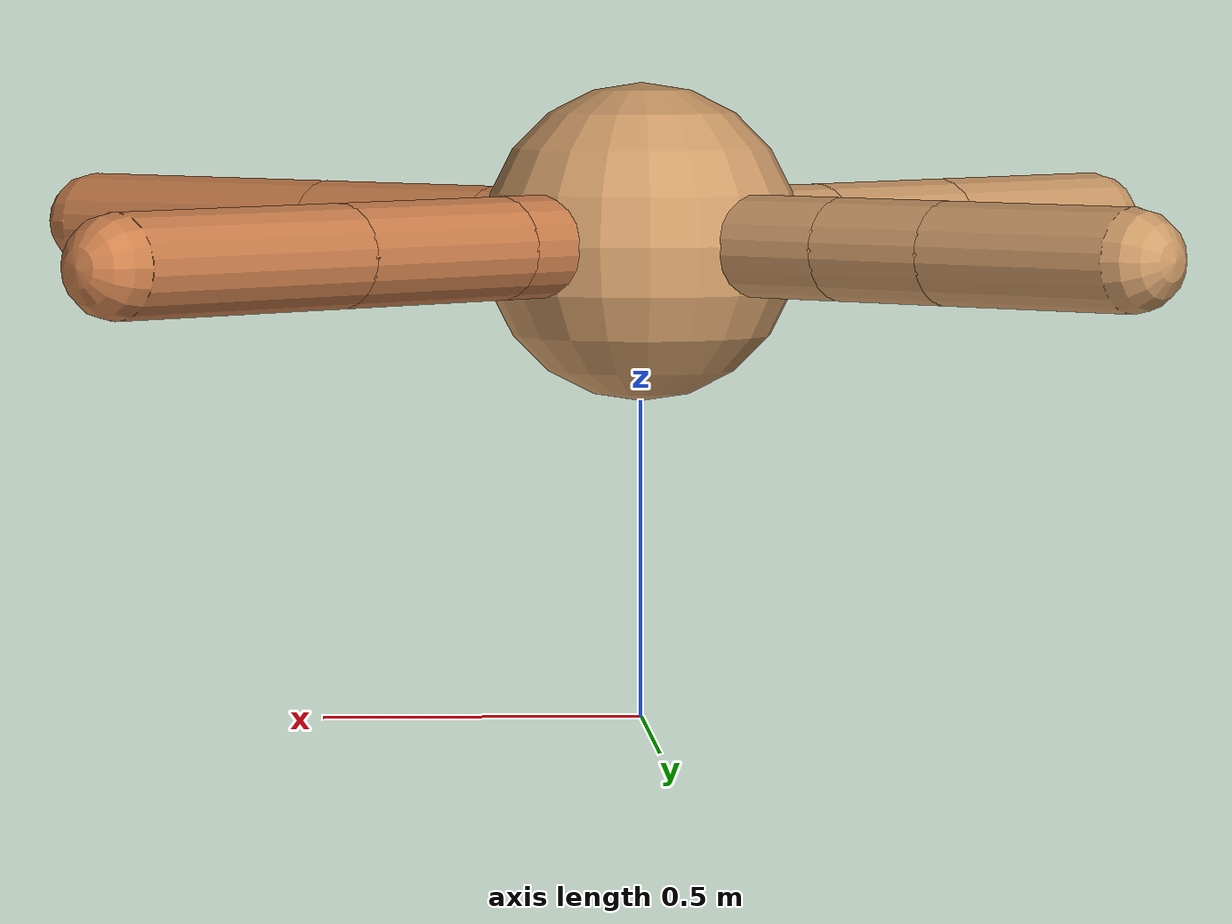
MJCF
<mujoco model="ant">
  <compiler angle="degree" coordinate="local" inertiafromgeom="true" />
  <option integrator="RK4" timestep="0.01" />
  <custom>
    <numeric data="0.0 0.0 0.55 1.0 0.0 0.0 0.0 0.0 1.0 0.0 -1.0 0.0 -1.0 0.0 1.0" name="init_qpos" />
  </custom>
  <default>
    <joint armature="1" damping="1" limited="true" />
    <geom conaffinity="0" condim="3" density="5.0" friction="1.5 0.1 0.1" margin="0.01" rgba="0.8 0.6 0.4 1" />
  </default>
  <worldbody>
    <body name="torso" pos="0 0 0.75">
      <geom name="torso_geom" pos="0 0 0" size="0.25" type="sphere" />

      <body name="front_left_leg" pos="0 0 0">
        <geom fromto="0.0 0.0 0.0 0.22914240696487523 0.22914240696487523 0.0" name="aux_1_geom" size="0.08" type="capsule" rgba=".8 .5 .3 1" />
        <body name="aux_1" pos="0.22914240696487523 0.22914240696487523 0.0">
          <joint axis="0 0 1" name="hip_1" pos="0.0 0.0 0.0" range="-40 40" type="hinge" />
          <geom fromto="0.0 0.0 0.0 0.25054458766431315 0.25054458766431315 0.0" name="left_leg_geom" size="0.08" type="capsule" rgba=".8 .5 .3 1" />
          <body pos="0.25054458766431315 0.25054458766431315 0.0" name="front_left_foot">
            <joint axis="-1 1 0" name="ankle_1" pos="0.0 0.0 0.0" range="30 100" type="hinge" />
            <geom fromto="0.0 0.0 0.0 0.33126786651816453 0.33126786651816453 0.0" name="left_ankle_geom" size="0.08" type="capsule" rgba=".8 .5 .3 1" />
          </body>
        </body>
      </body>
      <body name="front_right_leg" pos="0 0 0">
        <geom fromto="0.0 0.0 0.0 -0.29027258163556297 0.29027258163556297 0.0" name="aux_2_geom" size="0.08" type="capsule" />
        <body name="aux_2" pos="-0.29027258163556297 0.29027258163556297 0.0">
          <joint axis="0 0 1" name="hip_2" pos="0.0 0.0 0.0" range="-40 40" type="hinge" />
          <geom fromto="0.0 0.0 0.0 -0.14769196926298755 0.14769196926298755 0.0" name="right_leg_geom" size="0.08" type="capsule" />
          <body pos="-0.14769196926298755 0.14769196926298755 0.0" name="front_right_foot">
            <joint axis="1 1 0" name="ankle_2" pos="0.0 0.0 0.0" range="-100 -30" type="hinge" />
            <geom fromto="0.0 0.0 0.0 -0.2519926168862785 0.2519926168862785 0.0" name="right_ankle_geom" size="0.08" type="capsule" />
          </body>
        </body>
      </body>
      <body name="left_back_leg" pos="0 0 0">
        <geom fromto="0.0 0.0 0.0 -0.2990244183174494 -0.2990244183174494 0.0" name="aux_3_geom" size="0.08" type="capsule" />
        <body name="aux_3" pos="-0.2990244183174494 -0.2990244183174494 0.0">
          <joint axis="0 0 1" name="hip_3" pos="0.0 0.0 0.0" range="-40 40" type="hinge" />
          <geom fromto="0.0 0.0 0.0 -0.21861334657368575 -0.21861334657368575 0.0" name="back_leg_geom" size="0.08" type="capsule" />
          <body pos="-0.21861334657368575 -0.21861334657368575 0.0" name="left_back_foot">
            <joint axis="-1 1 0" name="ankle_3" pos="0.0 0.0 0.0" range="-100 -30" type="hinge" />
            <geom fromto="0.0 0.0 0.0 -0.28448266941757144 -0.28448266941757144 0.0" name="third_ankle_geom" size="0.08" type="capsule" />
          </body>
        </body>
      </body>
      <body name="right_back_leg" pos="0 0 0">
        <geom fromto="0.0 0.0 0.0 0.22191339849219838 -0.22191339849219838 0.0" name="aux_4_geom" size="0.08" type="capsule" rgba=".8 .5 .3 1" />
        <body name="aux_4" pos="0.22191339849219838 -0.22191339849219838 0.0">
          <joint axis="0 0 1" name="hip_4" pos="0.0 0.0 0.0" range="-40 40" type="hinge" />
          <geom fromto="0.0 0.0 0.0 0.26462963975782844 -0.26462963975782844 0.0" name="rightback_leg_geom" size="0.08" type="capsule" rgba=".8 .5 .3 1" />
          <body pos="0.26462963975782844 -0.26462963975782844 0.0" name="right_back_foot">
            <joint axis="1 1 0" name="ankle_4" pos="0.0 0.0 0.0" range="30 100" type="hinge" />
            <geom fromto="0.0 0.0 0.0 0.3815603618363435 -0.3815603618363435 0.0" name="fourth_ankle_geom" size="0.08" type="capsule" rgba=".8 .5 .3 1" />
          </body>
        </body>
      </body>
    </body>
  </worldbody>
  <actuator>
    <motor ctrllimited="true" ctrlrange="-1.0 1.0" joint="hip_4" gear="150" />
    <motor ctrllimited="true" ctrlrange="-1.0 1.0" joint="ankle_4" gear="150" />
    <motor ctrllimited="true" ctrlrange="-1.0 1.0" joint="hip_1" gear="150" />
    <motor ctrllimited="true" ctrlrange="-1.0 1.0" joint="ankle_1" gear="150" />
    <motor ctrllimited="true" ctrlrange="-1.0 1.0" joint="hip_2" gear="150" />
    <motor ctrllimited="true" ctrlrange="-1.0 1.0" joint="ankle_2" gear="150" />
    <motor ctrllimited="true" ctrlrange="-1.0 1.0" joint="hip_3" gear="150" />
    <motor ctrllimited="true" ctrlrange="-1.0 1.0" joint="ankle_3" gear="150" />
  </actuator>
</mujoco>
